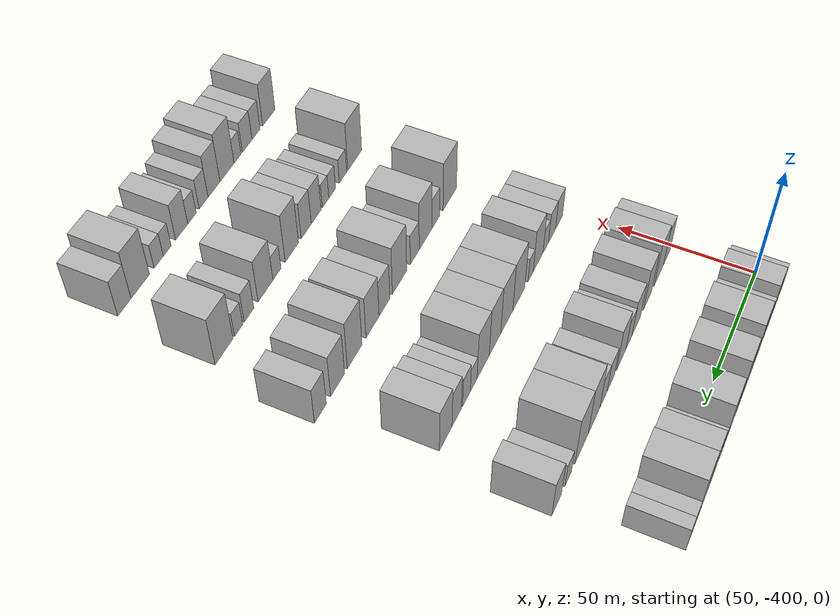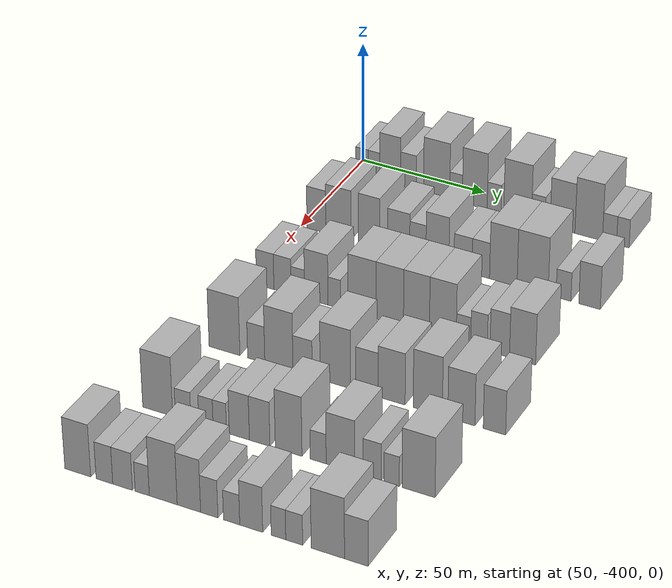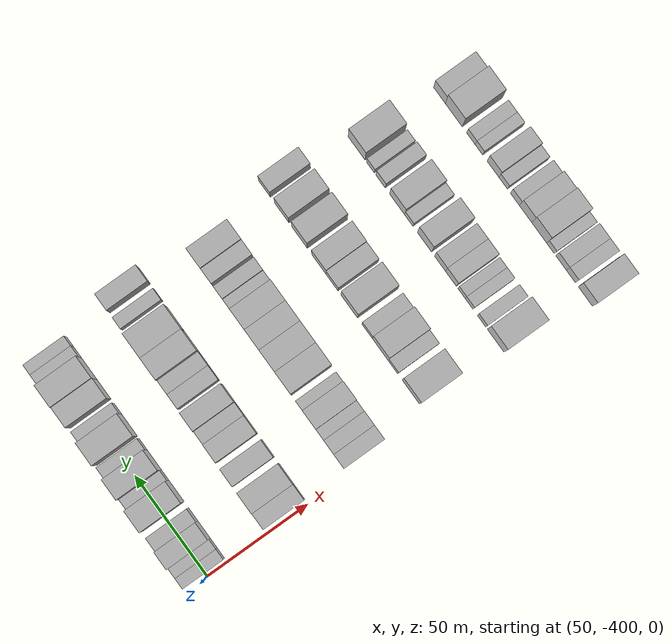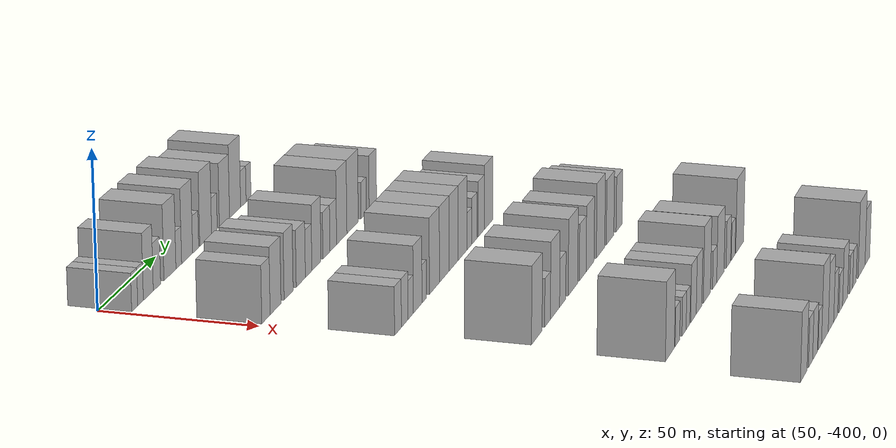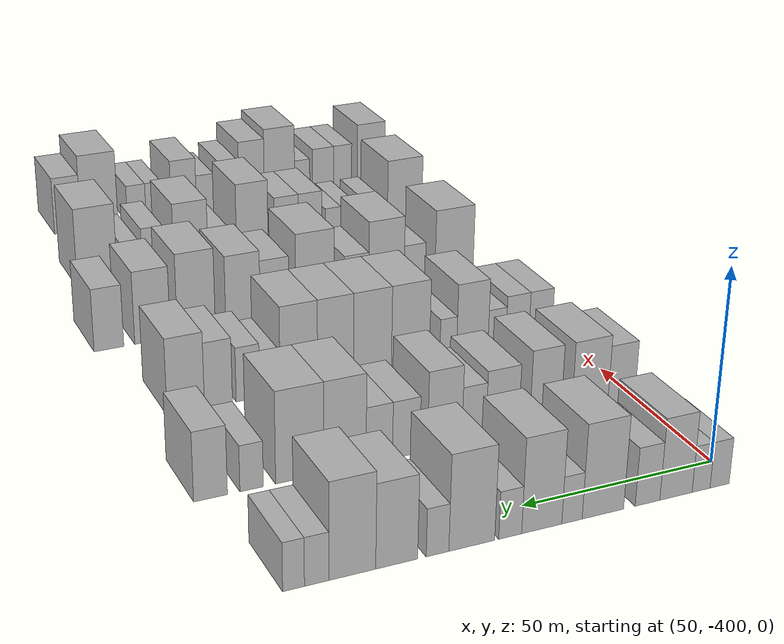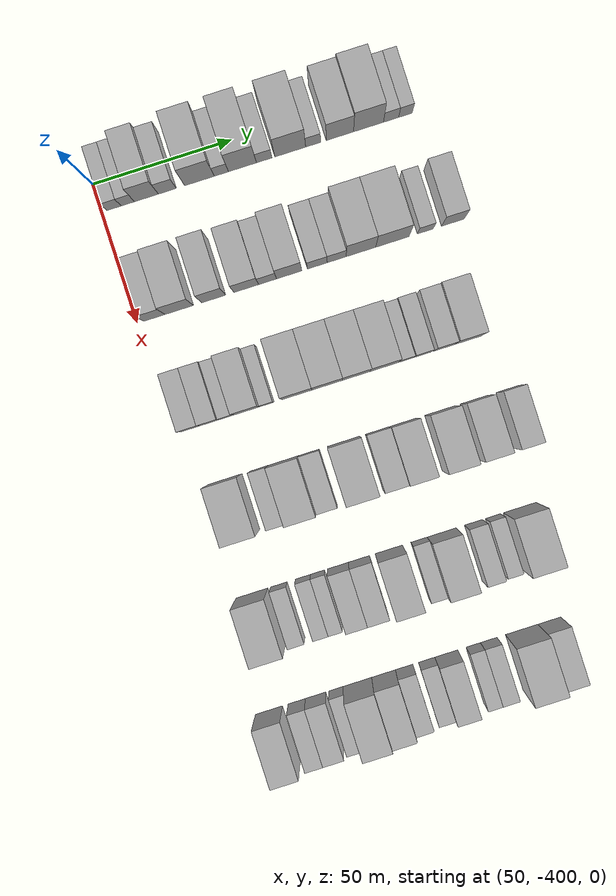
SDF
<sdf version="1.6">
 <world name="default">
  <model name="building_24">
   <static>1</static>
   <pose>50.0000 -395.5528 0 0.000000 0.000000 0.000000</pose>
   <link name="link">
    <pose>0 0 6.00 0 0 0</pose>
    <collision name="collision"><geometry><box><size>20.0000 5.1653 12.0000</size></box></geometry></collision>
    <visual name="visual">
     <cast_shadows>0</cast_shadows>
     <geometry><box><size>20.0000 5.1653 12.0000</size></box></geometry>
     <material>
      <script>
       <uri>model://HANNAS_wall/materials/scripts</uri>
       <uri>model://HANNAS_wall/materials/textures</uri>
       <name>vrc/HANNAS_wall</name>
      </script>
     </material>
    </visual>
   </link>
  </model>
  <model name="building_25">
   <static>1</static>
   <pose>50.0000 -390.5702 0 0.000000 0.000000 0.000000</pose>
   <link name="link">
    <pose>0 0 6.00 0 0 0</pose>
    <collision name="collision"><geometry><box><size>20.0000 4.8000 12.0000</size></box></geometry></collision>
    <visual name="visual">
     <cast_shadows>0</cast_shadows>
     <geometry><box><size>20.0000 4.8000 12.0000</size></box></geometry>
     <material>
      <script>
       <uri>model://HANNAS_wall/materials/scripts</uri>
       <uri>model://HANNAS_wall/materials/textures</uri>
       <name>vrc/HANNAS_wall</name>
      </script>
     </material>
    </visual>
   </link>
  </model>
  <model name="building_26">
   <static>1</static>
   <pose>50.0000 -383.8845 0 0.000000 0.000000 0.000000</pose>
   <link name="link">
    <pose>0 0 10.50 0 0 0</pose>
    <collision name="collision"><geometry><box><size>20.0000 8.5712 21.0000</size></box></geometry></collision>
    <visual name="visual">
     <cast_shadows>0</cast_shadows>
     <geometry><box><size>20.0000 8.5712 21.0000</size></box></geometry>
     <material>
      <script>
       <uri>model://HANNAS_wall/materials/scripts</uri>
       <uri>model://HANNAS_wall/materials/textures</uri>
       <name>vrc/HANNAS_wall</name>
      </script>
     </material>
    </visual>
   </link>
  </model>
  <model name="building_27">
   <static>1</static>
   <pose>50.0000 -376.3805 0 0.000000 0.000000 0.000000</pose>
   <link name="link">
    <pose>0 0 7.50 0 0 0</pose>
    <collision name="collision"><geometry><box><size>20.0000 6.4369 15.0000</size></box></geometry></collision>
    <visual name="visual">
     <cast_shadows>0</cast_shadows>
     <geometry><box><size>20.0000 6.4369 15.0000</size></box></geometry>
     <material>
      <script>
       <uri>model://HANNAS_wall/materials/scripts</uri>
       <uri>model://HANNAS_wall/materials/textures</uri>
       <name>vrc/HANNAS_wall</name>
      </script>
     </material>
    </visual>
   </link>
  </model>
  <model name="building_28">
   <static>1</static>
   <pose>50.0000 -364.8503 0 0.000000 0.000000 0.000000</pose>
   <link name="link">
    <pose>0 0 12.00 0 0 0</pose>
    <collision name="collision"><geometry><box><size>20.0000 10.6233 24.0000</size></box></geometry></collision>
    <visual name="visual">
     <cast_shadows>0</cast_shadows>
     <geometry><box><size>20.0000 10.6233 24.0000</size></box></geometry>
     <material>
      <script>
       <uri>model://HANNAS_wall/materials/scripts</uri>
       <uri>model://HANNAS_wall/materials/textures</uri>
       <name>vrc/HANNAS_wall</name>
      </script>
     </material>
    </visual>
   </link>
  </model>
  <model name="building_29">
   <static>1</static>
   <pose>50.0000 -356.9656 0 0.000000 0.000000 0.000000</pose>
   <link name="link">
    <pose>0 0 6.00 0 0 0</pose>
    <collision name="collision"><geometry><box><size>20.0000 5.1462 12.0000</size></box></geometry></collision>
    <visual name="visual">
     <cast_shadows>0</cast_shadows>
     <geometry><box><size>20.0000 5.1462 12.0000</size></box></geometry>
     <material>
      <script>
       <uri>model://HANNAS_wall/materials/scripts</uri>
       <uri>model://HANNAS_wall/materials/textures</uri>
       <name>vrc/HANNAS_wall</name>
      </script>
     </material>
    </visual>
   </link>
  </model>
  <model name="building_30">
   <static>1</static>
   <pose>50.0000 -349.3893 0 0.000000 0.000000 0.000000</pose>
   <link name="link">
    <pose>0 0 12.00 0 0 0</pose>
    <collision name="collision"><geometry><box><size>20.0000 10.0063 24.0000</size></box></geometry></collision>
    <visual name="visual">
     <cast_shadows>0</cast_shadows>
     <geometry><box><size>20.0000 10.0063 24.0000</size></box></geometry>
     <material>
      <script>
       <uri>model://HANNAS_wall/materials/scripts</uri>
       <uri>model://HANNAS_wall/materials/textures</uri>
       <name>vrc/HANNAS_wall</name>
      </script>
     </material>
    </visual>
   </link>
  </model>
  <model name="building_31">
   <static>1</static>
   <pose>50.0000 -341.5780 0 0.000000 0.000000 0.000000</pose>
   <link name="link">
    <pose>0 0 6.00 0 0 0</pose>
    <collision name="collision"><geometry><box><size>20.0000 5.6164 12.0000</size></box></geometry></collision>
    <visual name="visual">
     <cast_shadows>0</cast_shadows>
     <geometry><box><size>20.0000 5.6164 12.0000</size></box></geometry>
     <material>
      <script>
       <uri>model://HANNAS_wall/materials/scripts</uri>
       <uri>model://HANNAS_wall/materials/textures</uri>
       <name>vrc/HANNAS_wall</name>
      </script>
     </material>
    </visual>
   </link>
  </model>
  <model name="building_32">
   <static>1</static>
   <pose>50.0000 -332.2388 0 0.000000 0.000000 0.000000</pose>
   <link name="link">
    <pose>0 0 12.00 0 0 0</pose>
    <collision name="collision"><geometry><box><size>20.0000 11.0620 24.0000</size></box></geometry></collision>
    <visual name="visual">
     <cast_shadows>0</cast_shadows>
     <geometry><box><size>20.0000 11.0620 24.0000</size></box></geometry>
     <material>
      <script>
       <uri>model://HANNAS_wall/materials/scripts</uri>
       <uri>model://HANNAS_wall/materials/textures</uri>
       <name>vrc/HANNAS_wall</name>
      </script>
     </material>
    </visual>
   </link>
  </model>
  <model name="building_33">
   <static>1</static>
   <pose>50.0000 -324.0126 0 0.000000 0.000000 0.000000</pose>
   <link name="link">
    <pose>0 0 6.00 0 0 0</pose>
    <collision name="collision"><geometry><box><size>20.0000 5.3904 12.0000</size></box></geometry></collision>
    <visual name="visual">
     <cast_shadows>0</cast_shadows>
     <geometry><box><size>20.0000 5.3904 12.0000</size></box></geometry>
     <material>
      <script>
       <uri>model://HANNAS_wall/materials/scripts</uri>
       <uri>model://HANNAS_wall/materials/textures</uri>
       <name>vrc/HANNAS_wall</name>
      </script>
     </material>
    </visual>
   </link>
  </model>
  <model name="building_34">
   <static>1</static>
   <pose>50.0000 -314.4195 0 0.000000 0.000000 0.000000</pose>
   <link name="link">
    <pose>0 0 10.50 0 0 0</pose>
    <collision name="collision"><geometry><box><size>20.0000 9.7957 21.0000</size></box></geometry></collision>
    <visual name="visual">
     <cast_shadows>0</cast_shadows>
     <geometry><box><size>20.0000 9.7957 21.0000</size></box></geometry>
     <material>
      <script>
       <uri>model://HANNAS_wall/materials/scripts</uri>
       <uri>model://HANNAS_wall/materials/textures</uri>
       <name>vrc/HANNAS_wall</name>
      </script>
     </material>
    </visual>
   </link>
  </model>
  <model name="building_35">
   <static>1</static>
   <pose>50.0000 -304.1381 0 0.000000 0.000000 0.000000</pose>
   <link name="link">
    <pose>0 0 12.00 0 0 0</pose>
    <collision name="collision"><geometry><box><size>20.0000 10.7670 24.0000</size></box></geometry></collision>
    <visual name="visual">
     <cast_shadows>0</cast_shadows>
     <geometry><box><size>20.0000 10.7670 24.0000</size></box></geometry>
     <material>
      <script>
       <uri>model://HANNAS_wall/materials/scripts</uri>
       <uri>model://HANNAS_wall/materials/textures</uri>
       <name>vrc/HANNAS_wall</name>
      </script>
     </material>
    </visual>
   </link>
  </model>
  <model name="building_36">
   <static>1</static>
   <pose>50.0000 -296.0184 0 0.000000 0.000000 0.000000</pose>
   <link name="link">
    <pose>0 0 6.00 0 0 0</pose>
    <collision name="collision"><geometry><box><size>20.0000 5.4725 12.0000</size></box></geometry></collision>
    <visual name="visual">
     <cast_shadows>0</cast_shadows>
     <geometry><box><size>20.0000 5.4725 12.0000</size></box></geometry>
     <material>
      <script>
       <uri>model://HANNAS_wall/materials/scripts</uri>
       <uri>model://HANNAS_wall/materials/textures</uri>
       <name>vrc/HANNAS_wall</name>
      </script>
     </material>
    </visual>
   </link>
  </model>
  <model name="building_37">
   <static>1</static>
   <pose>50.0000 -290.8451 0 0.000000 0.000000 0.000000</pose>
   <link name="link">
    <pose>0 0 6.00 0 0 0</pose>
    <collision name="collision"><geometry><box><size>20.0000 4.8742 12.0000</size></box></geometry></collision>
    <visual name="visual">
     <cast_shadows>0</cast_shadows>
     <geometry><box><size>20.0000 4.8742 12.0000</size></box></geometry>
     <material>
      <script>
       <uri>model://HANNAS_wall/materials/scripts</uri>
       <uri>model://HANNAS_wall/materials/textures</uri>
       <name>vrc/HANNAS_wall</name>
      </script>
     </material>
    </visual>
   </link>
  </model>
  <model name="building_161">
   <static>1</static>
   <pose>90.0000 -393.7861 0 0.000000 0.000000 0.000000</pose>
   <link name="link">
    <pose>0 0 9.00 0 0 0</pose>
    <collision name="collision"><geometry><box><size>20.0000 7.7126 18.0000</size></box></geometry></collision>
    <visual name="visual">
     <cast_shadows>0</cast_shadows>
     <geometry><box><size>20.0000 7.7126 18.0000</size></box></geometry>
     <material>
      <script>
       <uri>model://HANNAS_wall/materials/scripts</uri>
       <uri>model://HANNAS_wall/materials/textures</uri>
       <name>vrc/HANNAS_wall</name>
      </script>
     </material>
    </visual>
   </link>
  </model>
  <model name="building_162">
   <static>1</static>
   <pose>90.0000 -384.8442 0 0.000000 0.000000 0.000000</pose>
   <link name="link">
    <pose>0 0 10.50 0 0 0</pose>
    <collision name="collision"><geometry><box><size>20.0000 10.1711 21.0000</size></box></geometry></collision>
    <visual name="visual">
     <cast_shadows>0</cast_shadows>
     <geometry><box><size>20.0000 10.1711 21.0000</size></box></geometry>
     <material>
      <script>
       <uri>model://HANNAS_wall/materials/scripts</uri>
       <uri>model://HANNAS_wall/materials/textures</uri>
       <name>vrc/HANNAS_wall</name>
      </script>
     </material>
    </visual>
   </link>
  </model>
  <model name="building_163">
   <static>1</static>
   <pose>90.0000 -372.4738 0 0.000000 0.000000 0.000000</pose>
   <link name="link">
    <pose>0 0 10.50 0 0 0</pose>
    <collision name="collision"><geometry><box><size>20.0000 8.5699 21.0000</size></box></geometry></collision>
    <visual name="visual">
     <cast_shadows>0</cast_shadows>
     <geometry><box><size>20.0000 8.5699 21.0000</size></box></geometry>
     <material>
      <script>
       <uri>model://HANNAS_wall/materials/scripts</uri>
       <uri>model://HANNAS_wall/materials/textures</uri>
       <name>vrc/HANNAS_wall</name>
      </script>
     </material>
    </visual>
   </link>
  </model>
  <model name="building_164">
   <static>1</static>
   <pose>90.0000 -360.7479 0 0.000000 0.000000 0.000000</pose>
   <link name="link">
    <pose>0 0 9.00 0 0 0</pose>
    <collision name="collision"><geometry><box><size>20.0000 8.8819 18.0000</size></box></geometry></collision>
    <visual name="visual">
     <cast_shadows>0</cast_shadows>
     <geometry><box><size>20.0000 8.8819 18.0000</size></box></geometry>
     <material>
      <script>
       <uri>model://HANNAS_wall/materials/scripts</uri>
       <uri>model://HANNAS_wall/materials/textures</uri>
       <name>vrc/HANNAS_wall</name>
      </script>
     </material>
    </visual>
   </link>
  </model>
  <model name="building_165">
   <static>1</static>
   <pose>90.0000 -353.0992 0 0.000000 0.000000 0.000000</pose>
   <link name="link">
    <pose>0 0 7.50 0 0 0</pose>
    <collision name="collision"><geometry><box><size>20.0000 6.4155 15.0000</size></box></geometry></collision>
    <visual name="visual">
     <cast_shadows>0</cast_shadows>
     <geometry><box><size>20.0000 6.4155 15.0000</size></box></geometry>
     <material>
      <script>
       <uri>model://HANNAS_wall/materials/scripts</uri>
       <uri>model://HANNAS_wall/materials/textures</uri>
       <name>vrc/HANNAS_wall</name>
      </script>
     </material>
    </visual>
   </link>
  </model>
  <model name="building_166">
   <static>1</static>
   <pose>90.0000 -345.3669 0 0.000000 0.000000 0.000000</pose>
   <link name="link">
    <pose>0 0 10.50 0 0 0</pose>
    <collision name="collision"><geometry><box><size>20.0000 9.0491 21.0000</size></box></geometry></collision>
    <visual name="visual">
     <cast_shadows>0</cast_shadows>
     <geometry><box><size>20.0000 9.0491 21.0000</size></box></geometry>
     <material>
      <script>
       <uri>model://HANNAS_wall/materials/scripts</uri>
       <uri>model://HANNAS_wall/materials/textures</uri>
       <name>vrc/HANNAS_wall</name>
      </script>
     </material>
    </visual>
   </link>
  </model>
  <model name="building_167">
   <static>1</static>
   <pose>90.0000 -335.2931 0 0.000000 0.000000 0.000000</pose>
   <link name="link">
    <pose>0 0 7.50 0 0 0</pose>
    <collision name="collision"><geometry><box><size>20.0000 7.0986 15.0000</size></box></geometry></collision>
    <visual name="visual">
     <cast_shadows>0</cast_shadows>
     <geometry><box><size>20.0000 7.0986 15.0000</size></box></geometry>
     <material>
      <script>
       <uri>model://HANNAS_wall/materials/scripts</uri>
       <uri>model://HANNAS_wall/materials/textures</uri>
       <name>vrc/HANNAS_wall</name>
      </script>
     </material>
    </visual>
   </link>
  </model>
  <model name="building_168">
   <static>1</static>
   <pose>90.0000 -328.3505 0 0.000000 0.000000 0.000000</pose>
   <link name="link">
    <pose>0 0 7.50 0 0 0</pose>
    <collision name="collision"><geometry><box><size>20.0000 6.7865 15.0000</size></box></geometry></collision>
    <visual name="visual">
     <cast_shadows>0</cast_shadows>
     <geometry><box><size>20.0000 6.7865 15.0000</size></box></geometry>
     <material>
      <script>
       <uri>model://HANNAS_wall/materials/scripts</uri>
       <uri>model://HANNAS_wall/materials/textures</uri>
       <name>vrc/HANNAS_wall</name>
      </script>
     </material>
    </visual>
   </link>
  </model>
  <model name="building_169">
   <static>1</static>
   <pose>90.0000 -319.6318 0 0.000000 0.000000 0.000000</pose>
   <link name="link">
    <pose>0 0 12.00 0 0 0</pose>
    <collision name="collision"><geometry><box><size>20.0000 10.6510 24.0000</size></box></geometry></collision>
    <visual name="visual">
     <cast_shadows>0</cast_shadows>
     <geometry><box><size>20.0000 10.6510 24.0000</size></box></geometry>
     <material>
      <script>
       <uri>model://HANNAS_wall/materials/scripts</uri>
       <uri>model://HANNAS_wall/materials/textures</uri>
       <name>vrc/HANNAS_wall</name>
      </script>
     </material>
    </visual>
   </link>
  </model>
  <model name="building_170">
   <static>1</static>
   <pose>90.0000 -308.3309 0 0.000000 0.000000 0.000000</pose>
   <link name="link">
    <pose>0 0 12.00 0 0 0</pose>
    <collision name="collision"><geometry><box><size>20.0000 11.9508 24.0000</size></box></geometry></collision>
    <visual name="visual">
     <cast_shadows>0</cast_shadows>
     <geometry><box><size>20.0000 11.9508 24.0000</size></box></geometry>
     <material>
      <script>
       <uri>model://HANNAS_wall/materials/scripts</uri>
       <uri>model://HANNAS_wall/materials/textures</uri>
       <name>vrc/HANNAS_wall</name>
      </script>
     </material>
    </visual>
   </link>
  </model>
  <model name="building_171">
   <static>1</static>
   <pose>90.0000 -296.5120 0 0.000000 0.000000 0.000000</pose>
   <link name="link">
    <pose>0 0 6.00 0 0 0</pose>
    <collision name="collision"><geometry><box><size>20.0000 5.6869 12.0000</size></box></geometry></collision>
    <visual name="visual">
     <cast_shadows>0</cast_shadows>
     <geometry><box><size>20.0000 5.6869 12.0000</size></box></geometry>
     <material>
      <script>
       <uri>model://HANNAS_wall/materials/scripts</uri>
       <uri>model://HANNAS_wall/materials/textures</uri>
       <name>vrc/HANNAS_wall</name>
      </script>
     </material>
    </visual>
   </link>
  </model>
  <model name="building_172">
   <static>1</static>
   <pose>90.0000 -286.6254 0 0.000000 0.000000 0.000000</pose>
   <link name="link">
    <pose>0 0 9.00 0 0 0</pose>
    <collision name="collision"><geometry><box><size>20.0000 8.0864 18.0000</size></box></geometry></collision>
    <visual name="visual">
     <cast_shadows>0</cast_shadows>
     <geometry><box><size>20.0000 8.0864 18.0000</size></box></geometry>
     <material>
      <script>
       <uri>model://HANNAS_wall/materials/scripts</uri>
       <uri>model://HANNAS_wall/materials/textures</uri>
       <name>vrc/HANNAS_wall</name>
      </script>
     </material>
    </visual>
   </link>
  </model>
  <model name="building_301">
   <static>1</static>
   <pose>130.0000 -393.2807 0 0.000000 0.000000 0.000000</pose>
   <link name="link">
    <pose>0 0 7.50 0 0 0</pose>
    <collision name="collision"><geometry><box><size>20.0000 6.9656 15.0000</size></box></geometry></collision>
    <visual name="visual">
     <cast_shadows>0</cast_shadows>
     <geometry><box><size>20.0000 6.9656 15.0000</size></box></geometry>
     <material>
      <script>
       <uri>model://HANNAS_wall/materials/scripts</uri>
       <uri>model://HANNAS_wall/materials/textures</uri>
       <name>vrc/HANNAS_wall</name>
      </script>
     </material>
    </visual>
   </link>
  </model>
  <model name="building_302">
   <static>1</static>
   <pose>130.0000 -386.3562 0 0.000000 0.000000 0.000000</pose>
   <link name="link">
    <pose>0 0 7.50 0 0 0</pose>
    <collision name="collision"><geometry><box><size>20.0000 6.8835 15.0000</size></box></geometry></collision>
    <visual name="visual">
     <cast_shadows>0</cast_shadows>
     <geometry><box><size>20.0000 6.8835 15.0000</size></box></geometry>
     <material>
      <script>
       <uri>model://HANNAS_wall/materials/scripts</uri>
       <uri>model://HANNAS_wall/materials/textures</uri>
       <name>vrc/HANNAS_wall</name>
      </script>
     </material>
    </visual>
   </link>
  </model>
  <model name="building_303">
   <static>1</static>
   <pose>130.0000 -380.2685 0 0.000000 0.000000 0.000000</pose>
   <link name="link">
    <pose>0 0 6.00 0 0 0</pose>
    <collision name="collision"><geometry><box><size>20.0000 5.2919 12.0000</size></box></geometry></collision>
    <visual name="visual">
     <cast_shadows>0</cast_shadows>
     <geometry><box><size>20.0000 5.2919 12.0000</size></box></geometry>
     <material>
      <script>
       <uri>model://HANNAS_wall/materials/scripts</uri>
       <uri>model://HANNAS_wall/materials/textures</uri>
       <name>vrc/HANNAS_wall</name>
      </script>
     </material>
    </visual>
   </link>
  </model>
  <model name="building_304">
   <static>1</static>
   <pose>130.0000 -373.0232 0 0.000000 0.000000 0.000000</pose>
   <link name="link">
    <pose>0 0 10.50 0 0 0</pose>
    <collision name="collision"><geometry><box><size>20.0000 9.1985 21.0000</size></box></geometry></collision>
    <visual name="visual">
     <cast_shadows>0</cast_shadows>
     <geometry><box><size>20.0000 9.1985 21.0000</size></box></geometry>
     <material>
      <script>
       <uri>model://HANNAS_wall/materials/scripts</uri>
       <uri>model://HANNAS_wall/materials/textures</uri>
       <name>vrc/HANNAS_wall</name>
      </script>
     </material>
    </visual>
   </link>
  </model>
  <model name="building_305">
   <static>1</static>
   <pose>130.0000 -366.0022 0 0.000000 0.000000 0.000000</pose>
   <link name="link">
    <pose>0 0 6.00 0 0 0</pose>
    <collision name="collision"><geometry><box><size>20.0000 4.8435 12.0000</size></box></geometry></collision>
    <visual name="visual">
     <cast_shadows>0</cast_shadows>
     <geometry><box><size>20.0000 4.8435 12.0000</size></box></geometry>
     <material>
      <script>
       <uri>model://HANNAS_wall/materials/scripts</uri>
       <uri>model://HANNAS_wall/materials/textures</uri>
       <name>vrc/HANNAS_wall</name>
      </script>
     </material>
    </visual>
   </link>
  </model>
  <model name="building_306">
   <static>1</static>
   <pose>130.0000 -355.1722 0 0.000000 0.000000 0.000000</pose>
   <link name="link">
    <pose>0 0 12.00 0 0 0</pose>
    <collision name="collision"><geometry><box><size>20.0000 10.8165 24.0000</size></box></geometry></collision>
    <visual name="visual">
     <cast_shadows>0</cast_shadows>
     <geometry><box><size>20.0000 10.8165 24.0000</size></box></geometry>
     <material>
      <script>
       <uri>model://HANNAS_wall/materials/scripts</uri>
       <uri>model://HANNAS_wall/materials/textures</uri>
       <name>vrc/HANNAS_wall</name>
      </script>
     </material>
    </visual>
   </link>
  </model>
  <model name="building_307">
   <static>1</static>
   <pose>130.0000 -344.4530 0 0.000000 0.000000 0.000000</pose>
   <link name="link">
    <pose>0 0 12.00 0 0 0</pose>
    <collision name="collision"><geometry><box><size>20.0000 10.6219 24.0000</size></box></geometry></collision>
    <visual name="visual">
     <cast_shadows>0</cast_shadows>
     <geometry><box><size>20.0000 10.6219 24.0000</size></box></geometry>
     <material>
      <script>
       <uri>model://HANNAS_wall/materials/scripts</uri>
       <uri>model://HANNAS_wall/materials/textures</uri>
       <name>vrc/HANNAS_wall</name>
      </script>
     </material>
    </visual>
   </link>
  </model>
  <model name="building_308">
   <static>1</static>
   <pose>130.0000 -334.1827 0 0.000000 0.000000 0.000000</pose>
   <link name="link">
    <pose>0 0 12.00 0 0 0</pose>
    <collision name="collision"><geometry><box><size>20.0000 9.9188 24.0000</size></box></geometry></collision>
    <visual name="visual">
     <cast_shadows>0</cast_shadows>
     <geometry><box><size>20.0000 9.9188 24.0000</size></box></geometry>
     <material>
      <script>
       <uri>model://HANNAS_wall/materials/scripts</uri>
       <uri>model://HANNAS_wall/materials/textures</uri>
       <name>vrc/HANNAS_wall</name>
      </script>
     </material>
    </visual>
   </link>
  </model>
  <model name="building_309">
   <static>1</static>
   <pose>130.0000 -324.1444 0 0.000000 0.000000 0.000000</pose>
   <link name="link">
    <pose>0 0 12.00 0 0 0</pose>
    <collision name="collision"><geometry><box><size>20.0000 10.1577 24.0000</size></box></geometry></collision>
    <visual name="visual">
     <cast_shadows>0</cast_shadows>
     <geometry><box><size>20.0000 10.1577 24.0000</size></box></geometry>
     <material>
      <script>
       <uri>model://HANNAS_wall/materials/scripts</uri>
       <uri>model://HANNAS_wall/materials/textures</uri>
       <name>vrc/HANNAS_wall</name>
      </script>
     </material>
    </visual>
   </link>
  </model>
  <model name="building_310">
   <static>1</static>
   <pose>130.0000 -316.3228 0 0.000000 0.000000 0.000000</pose>
   <link name="link">
    <pose>0 0 6.00 0 0 0</pose>
    <collision name="collision"><geometry><box><size>20.0000 5.4854 12.0000</size></box></geometry></collision>
    <visual name="visual">
     <cast_shadows>0</cast_shadows>
     <geometry><box><size>20.0000 5.4854 12.0000</size></box></geometry>
     <material>
      <script>
       <uri>model://HANNAS_wall/materials/scripts</uri>
       <uri>model://HANNAS_wall/materials/textures</uri>
       <name>vrc/HANNAS_wall</name>
      </script>
     </material>
    </visual>
   </link>
  </model>
  <model name="building_311">
   <static>1</static>
   <pose>130.0000 -310.4556 0 0.000000 0.000000 0.000000</pose>
   <link name="link">
    <pose>0 0 7.50 0 0 0</pose>
    <collision name="collision"><geometry><box><size>20.0000 6.2489 15.0000</size></box></geometry></collision>
    <visual name="visual">
     <cast_shadows>0</cast_shadows>
     <geometry><box><size>20.0000 6.2489 15.0000</size></box></geometry>
     <material>
      <script>
       <uri>model://HANNAS_wall/materials/scripts</uri>
       <uri>model://HANNAS_wall/materials/textures</uri>
       <name>vrc/HANNAS_wall</name>
      </script>
     </material>
    </visual>
   </link>
  </model>
  <model name="building_312">
   <static>1</static>
   <pose>130.0000 -302.6701 0 0.000000 0.000000 0.000000</pose>
   <link name="link">
    <pose>0 0 9.00 0 0 0</pose>
    <collision name="collision"><geometry><box><size>20.0000 7.3220 18.0000</size></box></geometry></collision>
    <visual name="visual">
     <cast_shadows>0</cast_shadows>
     <geometry><box><size>20.0000 7.3220 18.0000</size></box></geometry>
     <material>
      <script>
       <uri>model://HANNAS_wall/materials/scripts</uri>
       <uri>model://HANNAS_wall/materials/textures</uri>
       <name>vrc/HANNAS_wall</name>
      </script>
     </material>
    </visual>
   </link>
  </model>
  <model name="building_313">
   <static>1</static>
   <pose>130.0000 -294.1554 0 0.000000 0.000000 0.000000</pose>
   <link name="link">
    <pose>0 0 10.50 0 0 0</pose>
    <collision name="collision"><geometry><box><size>20.0000 9.7075 21.0000</size></box></geometry></collision>
    <visual name="visual">
     <cast_shadows>0</cast_shadows>
     <geometry><box><size>20.0000 9.7075 21.0000</size></box></geometry>
     <material>
      <script>
       <uri>model://HANNAS_wall/materials/scripts</uri>
       <uri>model://HANNAS_wall/materials/textures</uri>
       <name>vrc/HANNAS_wall</name>
      </script>
     </material>
    </visual>
   </link>
  </model>
  <model name="building_444">
   <static>1</static>
   <pose>170.0000 -387.5155 0 0.000000 0.000000 0.000000</pose>
   <link name="link">
    <pose>0 0 12.00 0 0 0</pose>
    <collision name="collision"><geometry><box><size>20.0000 11.9972 24.0000</size></box></geometry></collision>
    <visual name="visual">
     <cast_shadows>0</cast_shadows>
     <geometry><box><size>20.0000 11.9972 24.0000</size></box></geometry>
     <material>
      <script>
       <uri>model://HANNAS_wall/materials/scripts</uri>
       <uri>model://HANNAS_wall/materials/textures</uri>
       <name>vrc/HANNAS_wall</name>
      </script>
     </material>
    </visual>
   </link>
  </model>
  <model name="building_445">
   <static>1</static>
   <pose>170.0000 -375.2116 0 0.000000 0.000000 0.000000</pose>
   <link name="link">
    <pose>0 0 7.50 0 0 0</pose>
    <collision name="collision"><geometry><box><size>20.0000 6.6106 15.0000</size></box></geometry></collision>
    <visual name="visual">
     <cast_shadows>0</cast_shadows>
     <geometry><box><size>20.0000 6.6106 15.0000</size></box></geometry>
     <material>
      <script>
       <uri>model://HANNAS_wall/materials/scripts</uri>
       <uri>model://HANNAS_wall/materials/textures</uri>
       <name>vrc/HANNAS_wall</name>
      </script>
     </material>
    </visual>
   </link>
  </model>
  <model name="building_446">
   <static>1</static>
   <pose>170.0000 -366.4945 0 0.000000 0.000000 0.000000</pose>
   <link name="link">
    <pose>0 0 12.00 0 0 0</pose>
    <collision name="collision"><geometry><box><size>20.0000 10.8236 24.0000</size></box></geometry></collision>
    <visual name="visual">
     <cast_shadows>0</cast_shadows>
     <geometry><box><size>20.0000 10.8236 24.0000</size></box></geometry>
     <material>
      <script>
       <uri>model://HANNAS_wall/materials/scripts</uri>
       <uri>model://HANNAS_wall/materials/textures</uri>
       <name>vrc/HANNAS_wall</name>
      </script>
     </material>
    </visual>
   </link>
  </model>
  <model name="building_447">
   <static>1</static>
   <pose>170.0000 -357.4171 0 0.000000 0.000000 0.000000</pose>
   <link name="link">
    <pose>0 0 7.50 0 0 0</pose>
    <collision name="collision"><geometry><box><size>20.0000 7.3311 15.0000</size></box></geometry></collision>
    <visual name="visual">
     <cast_shadows>0</cast_shadows>
     <geometry><box><size>20.0000 7.3311 15.0000</size></box></geometry>
     <material>
      <script>
       <uri>model://HANNAS_wall/materials/scripts</uri>
       <uri>model://HANNAS_wall/materials/textures</uri>
       <name>vrc/HANNAS_wall</name>
      </script>
     </material>
    </visual>
   </link>
  </model>
  <model name="building_448">
   <static>1</static>
   <pose>170.0000 -345.0098 0 0.000000 0.000000 0.000000</pose>
   <link name="link">
    <pose>0 0 12.00 0 0 0</pose>
    <collision name="collision"><geometry><box><size>20.0000 11.4834 24.0000</size></box></geometry></collision>
    <visual name="visual">
     <cast_shadows>0</cast_shadows>
     <geometry><box><size>20.0000 11.4834 24.0000</size></box></geometry>
     <material>
      <script>
       <uri>model://HANNAS_wall/materials/scripts</uri>
       <uri>model://HANNAS_wall/materials/textures</uri>
       <name>vrc/HANNAS_wall</name>
      </script>
     </material>
    </visual>
   </link>
  </model>
  <model name="building_449">
   <static>1</static>
   <pose>170.0000 -333.0692 0 0.000000 0.000000 0.000000</pose>
   <link name="link">
    <pose>0 0 9.00 0 0 0</pose>
    <collision name="collision"><geometry><box><size>20.0000 8.3979 18.0000</size></box></geometry></collision>
    <visual name="visual">
     <cast_shadows>0</cast_shadows>
     <geometry><box><size>20.0000 8.3979 18.0000</size></box></geometry>
     <material>
      <script>
       <uri>model://HANNAS_wall/materials/scripts</uri>
       <uri>model://HANNAS_wall/materials/textures</uri>
       <name>vrc/HANNAS_wall</name>
      </script>
     </material>
    </visual>
   </link>
  </model>
  <model name="building_450">
   <static>1</static>
   <pose>170.0000 -323.8976 0 0.000000 0.000000 0.000000</pose>
   <link name="link">
    <pose>0 0 10.50 0 0 0</pose>
    <collision name="collision"><geometry><box><size>20.0000 9.9452 21.0000</size></box></geometry></collision>
    <visual name="visual">
     <cast_shadows>0</cast_shadows>
     <geometry><box><size>20.0000 9.9452 21.0000</size></box></geometry>
     <material>
      <script>
       <uri>model://HANNAS_wall/materials/scripts</uri>
       <uri>model://HANNAS_wall/materials/textures</uri>
       <name>vrc/HANNAS_wall</name>
      </script>
     </material>
    </visual>
   </link>
  </model>
  <model name="building_451">
   <static>1</static>
   <pose>170.0000 -310.5570 0 0.000000 0.000000 0.000000</pose>
   <link name="link">
    <pose>0 0 12.00 0 0 0</pose>
    <collision name="collision"><geometry><box><size>20.0000 10.7362 24.0000</size></box></geometry></collision>
    <visual name="visual">
     <cast_shadows>0</cast_shadows>
     <geometry><box><size>20.0000 10.7362 24.0000</size></box></geometry>
     <material>
      <script>
       <uri>model://HANNAS_wall/materials/scripts</uri>
       <uri>model://HANNAS_wall/materials/textures</uri>
       <name>vrc/HANNAS_wall</name>
      </script>
     </material>
    </visual>
   </link>
  </model>
  <model name="building_452">
   <static>1</static>
   <pose>170.0000 -298.2389 0 0.000000 0.000000 0.000000</pose>
   <link name="link">
    <pose>0 0 10.50 0 0 0</pose>
    <collision name="collision"><geometry><box><size>20.0000 9.8999 21.0000</size></box></geometry></collision>
    <visual name="visual">
     <cast_shadows>0</cast_shadows>
     <geometry><box><size>20.0000 9.8999 21.0000</size></box></geometry>
     <material>
      <script>
       <uri>model://HANNAS_wall/materials/scripts</uri>
       <uri>model://HANNAS_wall/materials/textures</uri>
       <name>vrc/HANNAS_wall</name>
      </script>
     </material>
    </visual>
   </link>
  </model>
  <model name="building_453">
   <static>1</static>
   <pose>170.0000 -286.2279 0 0.000000 0.000000 0.000000</pose>
   <link name="link">
    <pose>0 0 9.00 0 0 0</pose>
    <collision name="collision"><geometry><box><size>20.0000 8.1222 18.0000</size></box></geometry></collision>
    <visual name="visual">
     <cast_shadows>0</cast_shadows>
     <geometry><box><size>20.0000 8.1222 18.0000</size></box></geometry>
     <material>
      <script>
       <uri>model://HANNAS_wall/materials/scripts</uri>
       <uri>model://HANNAS_wall/materials/textures</uri>
       <name>vrc/HANNAS_wall</name>
      </script>
     </material>
    </visual>
   </link>
  </model>
  <model name="building_575">
   <static>1</static>
   <pose>210.0000 -390.7290 0 0.000000 0.000000 0.000000</pose>
   <link name="link">
    <pose>0 0 12.00 0 0 0</pose>
    <collision name="collision"><geometry><box><size>20.0000 11.4533 24.0000</size></box></geometry></collision>
    <visual name="visual">
     <cast_shadows>0</cast_shadows>
     <geometry><box><size>20.0000 11.4533 24.0000</size></box></geometry>
     <material>
      <script>
       <uri>model://HANNAS_wall/materials/scripts</uri>
       <uri>model://HANNAS_wall/materials/textures</uri>
       <name>vrc/HANNAS_wall</name>
      </script>
     </material>
    </visual>
   </link>
  </model>
  <model name="building_576">
   <static>1</static>
   <pose>210.0000 -381.0429 0 0.000000 0.000000 0.000000</pose>
   <link name="link">
    <pose>0 0 6.00 0 0 0</pose>
    <collision name="collision"><geometry><box><size>20.0000 5.9190 12.0000</size></box></geometry></collision>
    <visual name="visual">
     <cast_shadows>0</cast_shadows>
     <geometry><box><size>20.0000 5.9190 12.0000</size></box></geometry>
     <material>
      <script>
       <uri>model://HANNAS_wall/materials/scripts</uri>
       <uri>model://HANNAS_wall/materials/textures</uri>
       <name>vrc/HANNAS_wall</name>
      </script>
     </material>
    </visual>
   </link>
  </model>
  <model name="building_577">
   <static>1</static>
   <pose>210.0000 -372.3871 0 0.000000 0.000000 0.000000</pose>
   <link name="link">
    <pose>0 0 6.00 0 0 0</pose>
    <collision name="collision"><geometry><box><size>20.0000 5.3926 12.0000</size></box></geometry></collision>
    <visual name="visual">
     <cast_shadows>0</cast_shadows>
     <geometry><box><size>20.0000 5.3926 12.0000</size></box></geometry>
     <material>
      <script>
       <uri>model://HANNAS_wall/materials/scripts</uri>
       <uri>model://HANNAS_wall/materials/textures</uri>
       <name>vrc/HANNAS_wall</name>
      </script>
     </material>
    </visual>
   </link>
  </model>
  <model name="building_578">
   <static>1</static>
   <pose>210.0000 -367.1727 0 0.000000 0.000000 0.000000</pose>
   <link name="link">
    <pose>0 0 6.00 0 0 0</pose>
    <collision name="collision"><geometry><box><size>20.0000 5.0362 12.0000</size></box></geometry></collision>
    <visual name="visual">
     <cast_shadows>0</cast_shadows>
     <geometry><box><size>20.0000 5.0362 12.0000</size></box></geometry>
     <material>
      <script>
       <uri>model://HANNAS_wall/materials/scripts</uri>
       <uri>model://HANNAS_wall/materials/textures</uri>
       <name>vrc/HANNAS_wall</name>
      </script>
     </material>
    </visual>
   </link>
  </model>
  <model name="building_579">
   <static>1</static>
   <pose>210.0000 -359.8916 0 0.000000 0.000000 0.000000</pose>
   <link name="link">
    <pose>0 0 9.00 0 0 0</pose>
    <collision name="collision"><geometry><box><size>20.0000 7.5262 18.0000</size></box></geometry></collision>
    <visual name="visual">
     <cast_shadows>0</cast_shadows>
     <geometry><box><size>20.0000 7.5262 18.0000</size></box></geometry>
     <material>
      <script>
       <uri>model://HANNAS_wall/materials/scripts</uri>
       <uri>model://HANNAS_wall/materials/textures</uri>
       <name>vrc/HANNAS_wall</name>
      </script>
     </material>
    </visual>
   </link>
  </model>
  <model name="building_580">
   <static>1</static>
   <pose>210.0000 -352.3148 0 0.000000 0.000000 0.000000</pose>
   <link name="link">
    <pose>0 0 9.00 0 0 0</pose>
    <collision name="collision"><geometry><box><size>20.0000 7.6274 18.0000</size></box></geometry></collision>
    <visual name="visual">
     <cast_shadows>0</cast_shadows>
     <geometry><box><size>20.0000 7.6274 18.0000</size></box></geometry>
     <material>
      <script>
       <uri>model://HANNAS_wall/materials/scripts</uri>
       <uri>model://HANNAS_wall/materials/textures</uri>
       <name>vrc/HANNAS_wall</name>
      </script>
     </material>
    </visual>
   </link>
  </model>
  <model name="building_581">
   <static>1</static>
   <pose>210.0000 -341.5801 0 0.000000 0.000000 0.000000</pose>
   <link name="link">
    <pose>0 0 12.00 0 0 0</pose>
    <collision name="collision"><geometry><box><size>20.0000 9.8421 24.0000</size></box></geometry></collision>
    <visual name="visual">
     <cast_shadows>0</cast_shadows>
     <geometry><box><size>20.0000 9.8421 24.0000</size></box></geometry>
     <material>
      <script>
       <uri>model://HANNAS_wall/materials/scripts</uri>
       <uri>model://HANNAS_wall/materials/textures</uri>
       <name>vrc/HANNAS_wall</name>
      </script>
     </material>
    </visual>
   </link>
  </model>
  <model name="building_582">
   <static>1</static>
   <pose>210.0000 -330.7373 0 0.000000 0.000000 0.000000</pose>
   <link name="link">
    <pose>0 0 6.00 0 0 0</pose>
    <collision name="collision"><geometry><box><size>20.0000 5.8435 12.0000</size></box></geometry></collision>
    <visual name="visual">
     <cast_shadows>0</cast_shadows>
     <geometry><box><size>20.0000 5.8435 12.0000</size></box></geometry>
     <material>
      <script>
       <uri>model://HANNAS_wall/materials/scripts</uri>
       <uri>model://HANNAS_wall/materials/textures</uri>
       <name>vrc/HANNAS_wall</name>
      </script>
     </material>
    </visual>
   </link>
  </model>
  <model name="building_583">
   <static>1</static>
   <pose>210.0000 -322.6116 0 0.000000 0.000000 0.000000</pose>
   <link name="link">
    <pose>0 0 10.50 0 0 0</pose>
    <collision name="collision"><geometry><box><size>20.0000 10.4078 21.0000</size></box></geometry></collision>
    <visual name="visual">
     <cast_shadows>0</cast_shadows>
     <geometry><box><size>20.0000 10.4078 21.0000</size></box></geometry>
     <material>
      <script>
       <uri>model://HANNAS_wall/materials/scripts</uri>
       <uri>model://HANNAS_wall/materials/textures</uri>
       <name>vrc/HANNAS_wall</name>
      </script>
     </material>
    </visual>
   </link>
  </model>
  <model name="building_584">
   <static>1</static>
   <pose>210.0000 -311.1508 0 0.000000 0.000000 0.000000</pose>
   <link name="link">
    <pose>0 0 7.50 0 0 0</pose>
    <collision name="collision"><geometry><box><size>20.0000 6.5138 15.0000</size></box></geometry></collision>
    <visual name="visual">
     <cast_shadows>0</cast_shadows>
     <geometry><box><size>20.0000 6.5138 15.0000</size></box></geometry>
     <material>
      <script>
       <uri>model://HANNAS_wall/materials/scripts</uri>
       <uri>model://HANNAS_wall/materials/textures</uri>
       <name>vrc/HANNAS_wall</name>
      </script>
     </material>
    </visual>
   </link>
  </model>
  <model name="building_585">
   <static>1</static>
   <pose>210.0000 -304.1549 0 0.000000 0.000000 0.000000</pose>
   <link name="link">
    <pose>0 0 6.00 0 0 0</pose>
    <collision name="collision"><geometry><box><size>20.0000 5.4780 12.0000</size></box></geometry></collision>
    <visual name="visual">
     <cast_shadows>0</cast_shadows>
     <geometry><box><size>20.0000 5.4780 12.0000</size></box></geometry>
     <material>
      <script>
       <uri>model://HANNAS_wall/materials/scripts</uri>
       <uri>model://HANNAS_wall/materials/textures</uri>
       <name>vrc/HANNAS_wall</name>
      </script>
     </material>
    </visual>
   </link>
  </model>
  <model name="building_586">
   <static>1</static>
   <pose>210.0000 -294.5358 0 0.000000 0.000000 0.000000</pose>
   <link name="link">
    <pose>0 0 12.00 0 0 0</pose>
    <collision name="collision"><geometry><box><size>20.0000 11.7601 24.0000</size></box></geometry></collision>
    <visual name="visual">
     <cast_shadows>0</cast_shadows>
     <geometry><box><size>20.0000 11.7601 24.0000</size></box></geometry>
     <material>
      <script>
       <uri>model://HANNAS_wall/materials/scripts</uri>
       <uri>model://HANNAS_wall/materials/textures</uri>
       <name>vrc/HANNAS_wall</name>
      </script>
     </material>
    </visual>
   </link>
  </model>
  <model name="building_705">
   <static>1</static>
   <pose>250.0000 -397.4154 0 0.000000 0.000000 0.000000</pose>
   <link name="link">
    <pose>0 0 10.50 0 0 0</pose>
    <collision name="collision"><geometry><box><size>20.0000 9.7250 21.0000</size></box></geometry></collision>
    <visual name="visual">
     <cast_shadows>0</cast_shadows>
     <geometry><box><size>20.0000 9.7250 21.0000</size></box></geometry>
     <material>
      <script>
       <uri>model://HANNAS_wall/materials/scripts</uri>
       <uri>model://HANNAS_wall/materials/textures</uri>
       <name>vrc/HANNAS_wall</name>
      </script>
     </material>
    </visual>
   </link>
  </model>
  <model name="building_706">
   <static>1</static>
   <pose>250.0000 -387.4437 0 0.000000 0.000000 0.000000</pose>
   <link name="link">
    <pose>0 0 7.50 0 0 0</pose>
    <collision name="collision"><geometry><box><size>20.0000 6.2185 15.0000</size></box></geometry></collision>
    <visual name="visual">
     <cast_shadows>0</cast_shadows>
     <geometry><box><size>20.0000 6.2185 15.0000</size></box></geometry>
     <material>
      <script>
       <uri>model://HANNAS_wall/materials/scripts</uri>
       <uri>model://HANNAS_wall/materials/textures</uri>
       <name>vrc/HANNAS_wall</name>
      </script>
     </material>
    </visual>
   </link>
  </model>
  <model name="building_707">
   <static>1</static>
   <pose>250.0000 -380.6737 0 0.000000 0.000000 0.000000</pose>
   <link name="link">
    <pose>0 0 7.50 0 0 0</pose>
    <collision name="collision"><geometry><box><size>20.0000 7.3214 15.0000</size></box></geometry></collision>
    <visual name="visual">
     <cast_shadows>0</cast_shadows>
     <geometry><box><size>20.0000 7.3214 15.0000</size></box></geometry>
     <material>
      <script>
       <uri>model://HANNAS_wall/materials/scripts</uri>
       <uri>model://HANNAS_wall/materials/textures</uri>
       <name>vrc/HANNAS_wall</name>
      </script>
     </material>
    </visual>
   </link>
  </model>
  <model name="building_708">
   <static>1</static>
   <pose>250.0000 -373.4126 0 0.000000 0.000000 0.000000</pose>
   <link name="link">
    <pose>0 0 6.00 0 0 0</pose>
    <collision name="collision"><geometry><box><size>20.0000 5.2008 12.0000</size></box></geometry></collision>
    <visual name="visual">
     <cast_shadows>0</cast_shadows>
     <geometry><box><size>20.0000 5.2008 12.0000</size></box></geometry>
     <material>
      <script>
       <uri>model://HANNAS_wall/materials/scripts</uri>
       <uri>model://HANNAS_wall/materials/textures</uri>
       <name>vrc/HANNAS_wall</name>
      </script>
     </material>
    </visual>
   </link>
  </model>
  <model name="building_709">
   <static>1</static>
   <pose>250.0000 -365.6754 0 0.000000 0.000000 0.000000</pose>
   <link name="link">
    <pose>0 0 12.00 0 0 0</pose>
    <collision name="collision"><geometry><box><size>20.0000 10.2737 24.0000</size></box></geometry></collision>
    <visual name="visual">
     <cast_shadows>0</cast_shadows>
     <geometry><box><size>20.0000 10.2737 24.0000</size></box></geometry>
     <material>
      <script>
       <uri>model://HANNAS_wall/materials/scripts</uri>
       <uri>model://HANNAS_wall/materials/textures</uri>
       <name>vrc/HANNAS_wall</name>
      </script>
     </material>
    </visual>
   </link>
  </model>
  <model name="building_710">
   <static>1</static>
   <pose>250.0000 -356.2635 0 0.000000 0.000000 0.000000</pose>
   <link name="link">
    <pose>0 0 10.50 0 0 0</pose>
    <collision name="collision"><geometry><box><size>20.0000 8.5501 21.0000</size></box></geometry></collision>
    <visual name="visual">
     <cast_shadows>0</cast_shadows>
     <geometry><box><size>20.0000 8.5501 21.0000</size></box></geometry>
     <material>
      <script>
       <uri>model://HANNAS_wall/materials/scripts</uri>
       <uri>model://HANNAS_wall/materials/textures</uri>
       <name>vrc/HANNAS_wall</name>
      </script>
     </material>
    </visual>
   </link>
  </model>
  <model name="building_711">
   <static>1</static>
   <pose>250.0000 -348.8526 0 0.000000 0.000000 0.000000</pose>
   <link name="link">
    <pose>0 0 7.50 0 0 0</pose>
    <collision name="collision"><geometry><box><size>20.0000 6.2718 15.0000</size></box></geometry></collision>
    <visual name="visual">
     <cast_shadows>0</cast_shadows>
     <geometry><box><size>20.0000 6.2718 15.0000</size></box></geometry>
     <material>
      <script>
       <uri>model://HANNAS_wall/materials/scripts</uri>
       <uri>model://HANNAS_wall/materials/textures</uri>
       <name>vrc/HANNAS_wall</name>
      </script>
     </material>
    </visual>
   </link>
  </model>
  <model name="building_712">
   <static>1</static>
   <pose>250.0000 -340.7893 0 0.000000 0.000000 0.000000</pose>
   <link name="link">
    <pose>0 0 6.00 0 0 0</pose>
    <collision name="collision"><geometry><box><size>20.0000 5.8547 12.0000</size></box></geometry></collision>
    <visual name="visual">
     <cast_shadows>0</cast_shadows>
     <geometry><box><size>20.0000 5.8547 12.0000</size></box></geometry>
     <material>
      <script>
       <uri>model://HANNAS_wall/materials/scripts</uri>
       <uri>model://HANNAS_wall/materials/textures</uri>
       <name>vrc/HANNAS_wall</name>
      </script>
     </material>
    </visual>
   </link>
  </model>
  <model name="building_713">
   <static>1</static>
   <pose>250.0000 -333.7383 0 0.000000 0.000000 0.000000</pose>
   <link name="link">
    <pose>0 0 9.00 0 0 0</pose>
    <collision name="collision"><geometry><box><size>20.0000 8.2474 18.0000</size></box></geometry></collision>
    <visual name="visual">
     <cast_shadows>0</cast_shadows>
     <geometry><box><size>20.0000 8.2474 18.0000</size></box></geometry>
     <material>
      <script>
       <uri>model://HANNAS_wall/materials/scripts</uri>
       <uri>model://HANNAS_wall/materials/textures</uri>
       <name>vrc/HANNAS_wall</name>
      </script>
     </material>
    </visual>
   </link>
  </model>
  <model name="building_714">
   <static>1</static>
   <pose>250.0000 -324.0186 0 0.000000 0.000000 0.000000</pose>
   <link name="link">
    <pose>0 0 6.00 0 0 0</pose>
    <collision name="collision"><geometry><box><size>20.0000 5.1921 12.0000</size></box></geometry></collision>
    <visual name="visual">
     <cast_shadows>0</cast_shadows>
     <geometry><box><size>20.0000 5.1921 12.0000</size></box></geometry>
     <material>
      <script>
       <uri>model://HANNAS_wall/materials/scripts</uri>
       <uri>model://HANNAS_wall/materials/textures</uri>
       <name>vrc/HANNAS_wall</name>
      </script>
     </material>
    </visual>
   </link>
  </model>
  <model name="building_715">
   <static>1</static>
   <pose>250.0000 -318.4271 0 0.000000 0.000000 0.000000</pose>
   <link name="link">
    <pose>0 0 6.00 0 0 0</pose>
    <collision name="collision"><geometry><box><size>20.0000 5.9909 12.0000</size></box></geometry></collision>
    <visual name="visual">
     <cast_shadows>0</cast_shadows>
     <geometry><box><size>20.0000 5.9909 12.0000</size></box></geometry>
     <material>
      <script>
       <uri>model://HANNAS_wall/materials/scripts</uri>
       <uri>model://HANNAS_wall/materials/textures</uri>
       <name>vrc/HANNAS_wall</name>
      </script>
     </material>
    </visual>
   </link>
  </model>
  <model name="building_716">
   <static>1</static>
   <pose>250.0000 -306.5829 0 0.000000 0.000000 0.000000</pose>
   <link name="link">
    <pose>0 0 12.00 0 0 0</pose>
    <collision name="collision"><geometry><box><size>20.0000 11.6973 24.0000</size></box></geometry></collision>
    <visual name="visual">
     <cast_shadows>0</cast_shadows>
     <geometry><box><size>20.0000 11.6973 24.0000</size></box></geometry>
     <material>
      <script>
       <uri>model://HANNAS_wall/materials/scripts</uri>
       <uri>model://HANNAS_wall/materials/textures</uri>
       <name>vrc/HANNAS_wall</name>
      </script>
     </material>
    </visual>
   </link>
  </model>
  <model name="building_717">
   <static>1</static>
   <pose>250.0000 -296.6187 0 0.000000 0.000000 0.000000</pose>
   <link name="link">
    <pose>0 0 9.00 0 0 0</pose>
    <collision name="collision"><geometry><box><size>20.0000 8.2311 18.0000</size></box></geometry></collision>
    <visual name="visual">
     <cast_shadows>0</cast_shadows>
     <geometry><box><size>20.0000 8.2311 18.0000</size></box></geometry>
     <material>
      <script>
       <uri>model://HANNAS_wall/materials/scripts</uri>
       <uri>model://HANNAS_wall/materials/textures</uri>
       <name>vrc/HANNAS_wall</name>
      </script>
     </material>
    </visual>
   </link>
  </model>
 </world>
</sdf>
